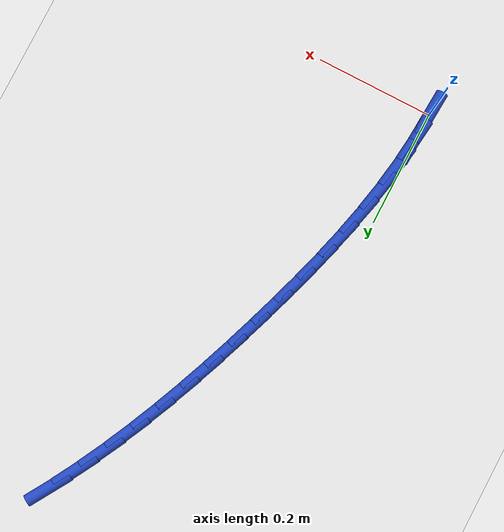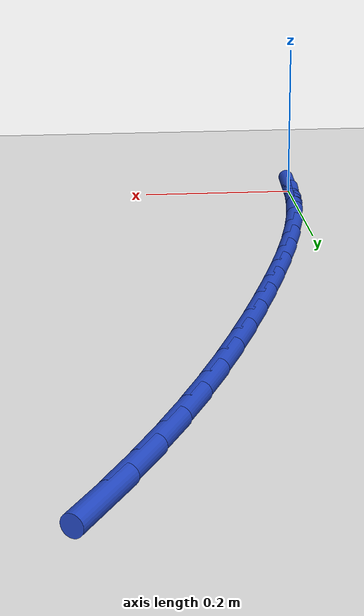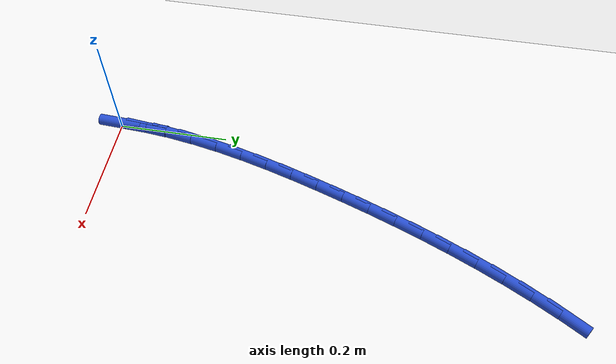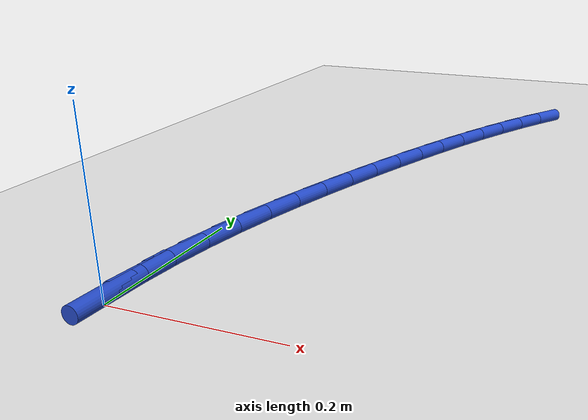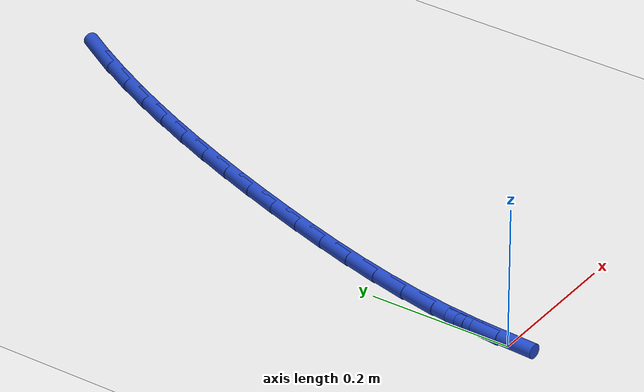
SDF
<sdf version="1.6">
 <world name="default">
  <model name="ground_plane">
   <static>1</static>
   <link name="link">
    <collision name="collision">
     <geometry><plane><normal>0 0 1</normal><size>100 100</size></plane></geometry>
     <surface><friction><ode><mu>100</mu><mu2>50</mu2></ode></friction></surface>
    </collision>
    <visual name="visual">
     <cast_shadows>0</cast_shadows>
     <geometry><plane><normal>0 0 1</normal><size>100 100</size></plane></geometry>
     <material>
      <script><uri>file://media/materials/scripts/gazebo.material</uri><name>Gazebo/WhiteGlow</name></script>
     </material>
    </visual>
   </link>
  </model>
  <model name="line">
   <link name="link_0">
    <pose>2.949029909160572e-17 -1.3877787807814457e-17 0.01 0 1.57 1.5125698714163094</pose>
    <collision name="collision">
     <geometry><cylinder><radius>0.01</radius><length>0.08</length></cylinder></geometry>
    </collision>
    <visual name="visual">
     <material>
      <script><name>Gazebo/Blue</name><uri>file://media/materials/scripts/gazebo.material</uri></script>
     </material>
     <geometry><cylinder><radius>0.01</radius><length>0.08</length></cylinder></geometry>
    </visual>
   </link>
   <link name="link_1">
    <pose>0.0029881043514026063 0.05126066307401777 0.01 0 1.57 1.4591487465994732</pose>
    <collision name="collision">
     <geometry><cylinder><radius>0.01</radius><length>0.08</length></cylinder></geometry>
    </collision>
    <visual name="visual">
     <material>
      <script><name>Gazebo/Blue</name><uri>file://media/materials/scripts/gazebo.material</uri></script>
     </material>
     <geometry><cylinder><radius>0.01</radius><length>0.08</length></cylinder></geometry>
    </visual>
   </link>
   <link name="link_2">
    <pose>0.008677130772625843 0.10200397962472153 0.01 0 1.57 1.4109564121631417</pose>
    <collision name="collision">
     <geometry><cylinder><radius>0.01</radius><length>0.08</length></cylinder></geometry>
    </collision>
    <visual name="visual">
     <material>
      <script><name>Gazebo/Blue</name><uri>file://media/materials/scripts/gazebo.material</uri></script>
     </material>
     <geometry><cylinder><radius>0.01</radius><length>0.08</length></cylinder></geometry>
    </visual>
   </link>
   <link name="link_3">
    <pose>0.016781529486799653 0.1522746624679436 0.01 0 1.57 1.3682809262274231</pose>
    <collision name="collision">
     <geometry><cylinder><radius>0.01</radius><length>0.08</length></cylinder></geometry>
    </collision>
    <visual name="visual">
     <material>
      <script><name>Gazebo/Blue</name><uri>file://media/materials/scripts/gazebo.material</uri></script>
     </material>
     <geometry><cylinder><radius>0.01</radius><length>0.08</length></cylinder></geometry>
    </visual>
   </link>
   <link name="link_4">
    <pose>0.027015750717054008 0.20211742441951636 0.01 0 1.57 1.331274907297689</pose>
    <collision name="collision">
     <geometry><cylinder><radius>0.01</radius><length>0.08</length></cylinder></geometry>
    </collision>
    <visual name="visual">
     <material>
      <script><name>Gazebo/Blue</name><uri>file://media/materials/scripts/gazebo.material</uri></script>
     </material>
     <geometry><cylinder><radius>0.01</radius><length>0.08</length></cylinder></geometry>
    </visual>
   </link>
   <link name="link_5">
    <pose>0.03909424468651879 0.2515769782952721 0.01 0 1.57 1.2999916365375197</pose>
    <collision name="collision">
     <geometry><cylinder><radius>0.01</radius><length>0.08</length></cylinder></geometry>
    </collision>
    <visual name="visual">
     <material>
      <script><name>Gazebo/Blue</name><uri>file://media/materials/scripts/gazebo.material</uri></script>
     </material>
     <geometry><cylinder><radius>0.01</radius><length>0.08</length></cylinder></geometry>
    </visual>
   </link>
   <link name="link_6">
    <pose>0.05273146161832403 0.30069803691104313 0.01 0 1.57 1.2744201473961687</pose>
    <collision name="collision">
     <geometry><cylinder><radius>0.01</radius><length>0.08</length></cylinder></geometry>
    </collision>
    <visual name="visual">
     <material>
      <script><name>Gazebo/Blue</name><uri>file://media/materials/scripts/gazebo.material</uri></script>
     </material>
     <geometry><cylinder><radius>0.01</radius><length>0.08</length></cylinder></geometry>
    </visual>
   </link>
   <link name="link_7">
    <pose>0.06764185173559956 0.34952531308266177 0.01 0 1.57 1.2545159372375712</pose>
    <collision name="collision">
     <geometry><cylinder><radius>0.01</radius><length>0.08</length></cylinder></geometry>
    </collision>
    <visual name="visual">
     <material>
      <script><name>Gazebo/Blue</name><uri>file://media/materials/scripts/gazebo.material</uri></script>
     </material>
     <geometry><cylinder><radius>0.01</radius><length>0.08</length></cylinder></geometry>
    </visual>
   </link>
   <link name="link_8">
    <pose>0.08353986526147542 0.39810351962596047 0.01 0 1.57 1.239511197028543</pose>
    <collision name="collision">
     <geometry><cylinder><radius>0.01</radius><length>0.08</length></cylinder></geometry>
    </collision>
    <visual name="visual">
     <material>
      <script><name>Gazebo/Blue</name><uri>file://media/materials/scripts/gazebo.material</uri></script>
     </material>
     <geometry><cylinder><radius>0.01</radius><length>0.08</length></cylinder></geometry>
    </visual>
   </link>
   <link name="link_9">
    <pose>0.10017497771721129 0.44646683063012177 0.01 0 1.57 1.2244391219263737</pose>
    <collision name="collision">
     <geometry><cylinder><radius>0.01</radius><length>0.08</length></cylinder></geometry>
    </collision>
    <visual name="visual">
     <material>
      <script><name>Gazebo/Blue</name><uri>file://media/materials/scripts/gazebo.material</uri></script>
     </material>
     <geometry><cylinder><radius>0.01</radius><length>0.08</length></cylinder></geometry>
    </visual>
   </link>
   <link name="link_10">
    <pose>0.11753813113778437 0.49457676556840946 0.01 0 1.57 1.2071981111151042</pose>
    <collision name="collision">
     <geometry><cylinder><radius>0.01</radius><length>0.08</length></cylinder></geometry>
    </collision>
    <visual name="visual">
     <material>
      <script><name>Gazebo/Blue</name><uri>file://media/materials/scripts/gazebo.material</uri></script>
     </material>
     <geometry><cylinder><radius>0.01</radius><length>0.08</length></cylinder></geometry>
    </visual>
   </link>
   <link name="link_11">
    <pose>0.13572204379259042 0.5423642205655012 0.01 0 1.57 1.1877562584093218</pose>
    <collision name="collision">
     <geometry><cylinder><radius>0.01</radius><length>0.08</length></cylinder></geometry>
    </collision>
    <visual name="visual">
     <material>
      <script><name>Gazebo/Blue</name><uri>file://media/materials/scripts/gazebo.material</uri></script>
     </material>
     <geometry><cylinder><radius>0.01</radius><length>0.08</length></cylinder></geometry>
    </visual>
   </link>
   <link name="link_12">
    <pose>0.15481979094780413 0.5897599843296736 0.01 0 1.57 1.1660896601815167</pose>
    <collision name="collision">
     <geometry><cylinder><radius>0.01</radius><length>0.08</length></cylinder></geometry>
    </collision>
    <visual name="visual">
     <material>
      <script><name>Gazebo/Blue</name><uri>file://media/materials/scripts/gazebo.material</uri></script>
     </material>
     <geometry><cylinder><radius>0.01</radius><length>0.08</length></cylinder></geometry>
    </visual>
   </link>
   <link name="link_13">
    <pose>0.1749244478696 0.6366948455692034 0.01 0 1.57 1.1421779631480247</pose>
    <collision name="collision">
     <geometry><cylinder><radius>0.01</radius><length>0.08</length></cylinder></geometry>
    </collision>
    <visual name="visual">
     <material>
      <script><name>Gazebo/Blue</name><uri>file://media/materials/scripts/gazebo.material</uri></script>
     </material>
     <geometry><cylinder><radius>0.01</radius><length>0.08</length></cylinder></geometry>
    </visual>
   </link>
   <link name="link_14">
    <pose>0.19612908982415264 0.6830995929923676 0.01 0 1.57 1.1160076271777934</pose>
    <collision name="collision">
     <geometry><cylinder><radius>0.01</radius><length>0.08</length></cylinder></geometry>
    </collision>
    <visual name="visual">
     <material>
      <script><name>Gazebo/Blue</name><uri>file://media/materials/scripts/gazebo.material</uri></script>
     </material>
     <geometry><cylinder><radius>0.01</radius><length>0.08</length></cylinder></geometry>
    </visual>
   </link>
   <link name="link_15">
    <pose>0.21852679207763673 0.7289050153074423 0.01 0 1.57 1.0875756077163548</pose>
    <collision name="collision">
     <geometry><cylinder><radius>0.01</radius><length>0.08</length></cylinder></geometry>
    </collision>
    <visual name="visual">
     <material>
      <script><name>Gazebo/Blue</name><uri>file://media/materials/scripts/gazebo.material</uri></script>
     </material>
     <geometry><cylinder><radius>0.01</radius><length>0.08</length></cylinder></geometry>
    </visual>
   </link>
   <link name="link_16">
    <pose>0.24221062989622663 0.7740419012227047 0.01 0 1.57 1.0568934012568016</pose>
    <collision name="collision">
     <geometry><cylinder><radius>0.01</radius><length>0.08</length></cylinder></geometry>
    </collision>
    <visual name="visual">
     <material>
      <script><name>Gazebo/Blue</name><uri>file://media/materials/scripts/gazebo.material</uri></script>
     </material>
     <geometry><cylinder><radius>0.01</radius><length>0.08</length></cylinder></geometry>
    </visual>
   </link>
   <link name="link_17">
    <pose>0.2672736785460973 0.8184410394464315 0.01 0 1.57 1.023991337457359</pose>
    <collision name="collision">
     <geometry><cylinder><radius>0.01</radius><length>0.08</length></cylinder></geometry>
    </collision>
    <visual name="visual">
     <material>
      <script><name>Gazebo/Blue</name><uri>file://media/materials/scripts/gazebo.material</uri></script>
     </material>
     <geometry><cylinder><radius>0.01</radius><length>0.08</length></cylinder></geometry>
    </visual>
   </link>
   <link name="link_151">
    <pose>0.003037163270241297 0.05119193640582377 0.01 0 1.57 1.5115368522874615</pose>
    <collision name="collision">
     <geometry><cylinder><radius>0.01</radius><length>0.08</length></cylinder></geometry>
    </collision>
    <visual name="visual">
     <material>
      <script><name>Gazebo/Blue</name><uri>file://media/materials/scripts/gazebo.material</uri></script>
     </material>
     <geometry><cylinder><radius>0.01</radius><length>0.08</length></cylinder></geometry>
    </visual>
   </link>
  </model>
 </world>
</sdf>
